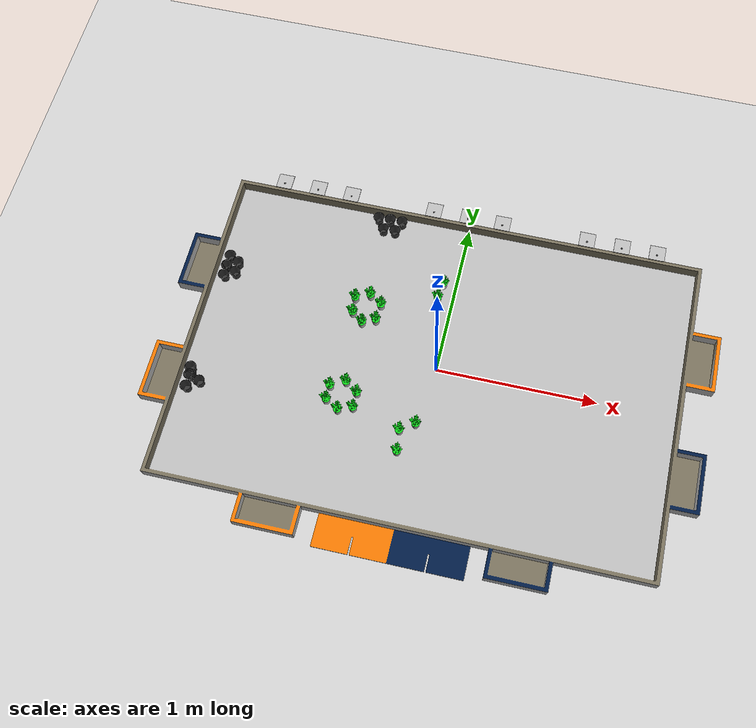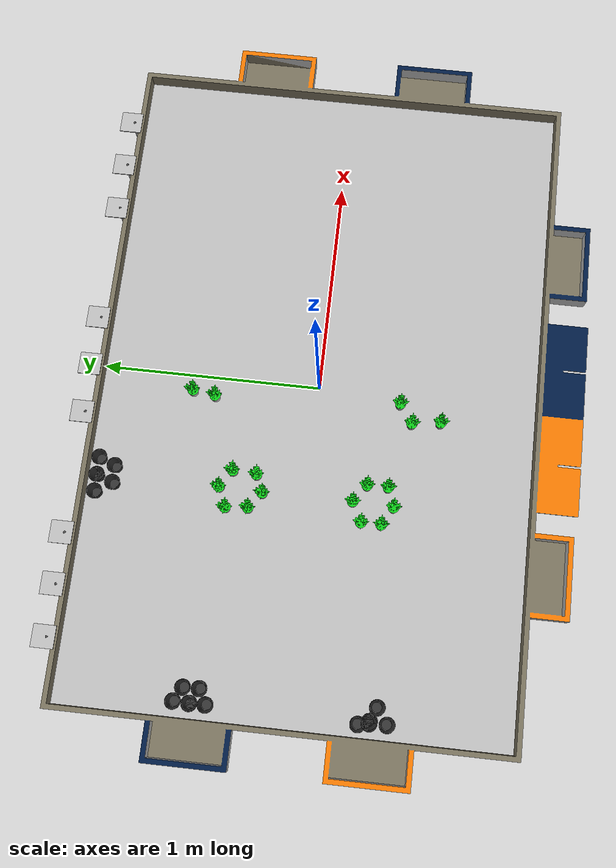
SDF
<sdf version="1.7">
 <world name="arena_eurobot">
  <model name="ground_plane">
   <static>true</static>
   <link name="link">
    <collision name="collision">
     <geometry><plane><normal>0 0 0</normal><size>100 100</size></plane></geometry>
    </collision>
    <visual name="visual">
     <geometry><plane><normal>0 0 0</normal><size>100 100</size></plane></geometry>
     <material>
      <ambient>0.8 0.8 0.8 1</ambient>
      <diffuse>0.8 0.8 0.8 1</diffuse>
      <specular>0.8 0.8 0.8 1</specular>
     </material>
    </visual>
   </link>
  </model>
  <model name="pot_1">
   <link name="base_link">
    <inertial>
     <pose>0 0 0.028448 0 -0 0</pose>
     <mass>0.016564</mass>
     <inertia>
      <ixx>1.415e-05</ixx>
      <ixy>-1.1112e-10</ixy>
      <ixz>-4.1716e-13</ixz>
      <iyy>1.4151e-05</iyy>
      <iyz>-1.5885e-13</iyz>
      <izz>1.1192e-05</izz>
     </inertia>
    </inertial>
    <collision name="base_link_collision">
     <geometry><mesh><scale>1 1 1</scale><uri>pot/meshes/base_link.dae</uri></mesh></geometry>
    </collision>
    <visual name="base_link_visual">
     <geometry><mesh><scale>1 1 1</scale><uri>pot/meshes/base_link.dae</uri></mesh></geometry>
    </visual>
   </link>
   <pose>-1.46317 -0.327897 0 0 -0 0</pose>
  </model>
  <model name="pot_4">
   <link name="base_link">
    <inertial>
     <pose>0 0 0.028448 0 -0 0</pose>
     <mass>0.016564</mass>
     <inertia>
      <ixx>1.415e-05</ixx>
      <ixy>-1.1112e-10</ixy>
      <ixz>-4.1716e-13</ixz>
      <iyy>1.4151e-05</iyy>
      <iyz>-1.5885e-13</iyz>
      <izz>1.1192e-05</izz>
     </inertia>
    </inertial>
    <collision name="base_link_collision">
     <geometry><mesh><scale>1 1 1</scale><uri>pot/meshes/base_link.dae</uri></mesh></geometry>
    </collision>
    <visual name="base_link_visual">
     <geometry><mesh><scale>1 1 1</scale><uri>pot/meshes/base_link.dae</uri></mesh></geometry>
    </visual>
   </link>
   <pose>-1.44622 -0.376296 0 0 -0 0</pose>
  </model>
  <model name="pot">
   <link name="base_link">
    <inertial>
     <pose>0 0 0.028448 0 -0 0</pose>
     <mass>0.016564</mass>
     <inertia>
      <ixx>1.415e-05</ixx>
      <ixy>-1.1112e-10</ixy>
      <ixz>-4.1716e-13</ixz>
      <iyy>1.4151e-05</iyy>
      <iyz>-1.5885e-13</iyz>
      <izz>1.1192e-05</izz>
     </inertia>
    </inertial>
    <collision name="base_link_collision">
     <geometry><mesh><scale>1 1 1</scale><uri>pot/meshes/base_link.dae</uri></mesh></geometry>
    </collision>
    <visual name="base_link_visual">
     <geometry><mesh><scale>1 1 1</scale><uri>pot/meshes/base_link.dae</uri></mesh></geometry>
    </visual>
   </link>
   <pose>-1.45371 -0.452197 0 0 -0 0</pose>
  </model>
  <model name="pot_2">
   <link name="base_link">
    <inertial>
     <pose>0 0 0.028448 0 -0 0</pose>
     <mass>0.016564</mass>
     <inertia>
      <ixx>1.415e-05</ixx>
      <ixy>-1.1112e-10</ixy>
      <ixz>-4.1716e-13</ixz>
      <iyy>1.4151e-05</iyy>
      <iyz>-1.5885e-13</iyz>
      <izz>1.1192e-05</izz>
     </inertia>
    </inertial>
    <collision name="base_link_collision">
     <geometry><mesh><scale>1 1 1</scale><uri>pot/meshes/base_link.dae</uri></mesh></geometry>
    </collision>
    <visual name="base_link_visual">
     <geometry><mesh><scale>1 1 1</scale><uri>pot/meshes/base_link.dae</uri></mesh></geometry>
    </visual>
   </link>
   <pose>-1.38703 -0.404067 0 0 -0 0</pose>
  </model>
  <model name="pot_3">
   <link name="base_link">
    <inertial>
     <pose>0 0 0.028448 0 -0 0</pose>
     <mass>0.016564</mass>
     <inertia>
      <ixx>1.415e-05</ixx>
      <ixy>-1.1112e-10</ixy>
      <ixz>-4.1716e-13</ixz>
      <iyy>1.4151e-05</iyy>
      <iyz>-1.5885e-13</iyz>
      <izz>1.1192e-05</izz>
     </inertia>
    </inertial>
    <collision name="base_link_collision">
     <geometry><mesh><scale>1 1 1</scale><uri>pot/meshes/base_link.dae</uri></mesh></geometry>
    </collision>
    <visual name="base_link_visual">
     <geometry><mesh><scale>1 1 1</scale><uri>pot/meshes/base_link.dae</uri></mesh></geometry>
    </visual>
   </link>
   <pose>-1.45477 -0.375674 0 0 -0 0</pose>
  </model>
  <model name="pot_5">
   <link name="base_link">
    <inertial>
     <pose>0 0 0.028448 0 -0 0</pose>
     <mass>0.016564</mass>
     <inertia>
      <ixx>1.415e-05</ixx>
      <ixy>-1.1112e-10</ixy>
      <ixz>-4.1716e-13</ixz>
      <iyy>1.4151e-05</iyy>
      <iyz>-1.5885e-13</iyz>
      <izz>1.1192e-05</izz>
     </inertia>
    </inertial>
    <collision name="base_link_collision">
     <geometry><mesh><scale>1 1 1</scale><uri>pot/meshes/base_link.dae</uri></mesh></geometry>
    </collision>
    <visual name="base_link_visual">
     <geometry><mesh><scale>1 1 1</scale><uri>pot/meshes/base_link.dae</uri></mesh></geometry>
    </visual>
   </link>
   <pose>-1.45244 0.465728 0 0 -0 0</pose>
  </model>
  <model name="pot_6">
   <link name="base_link">
    <inertial>
     <pose>0 0 0.028448 0 -0 0</pose>
     <mass>0.016564</mass>
     <inertia>
      <ixx>1.415e-05</ixx>
      <ixy>-1.1112e-10</ixy>
      <ixz>-4.1716e-13</ixz>
      <iyy>1.4151e-05</iyy>
      <iyz>-1.5885e-13</iyz>
      <izz>1.1192e-05</izz>
     </inertia>
    </inertial>
    <collision name="base_link_collision">
     <geometry><mesh><scale>1 1 1</scale><uri>pot/meshes/base_link.dae</uri></mesh></geometry>
    </collision>
    <visual name="base_link_visual">
     <geometry><mesh><scale>1 1 1</scale><uri>pot/meshes/base_link.dae</uri></mesh></geometry>
    </visual>
   </link>
   <pose>-1.45472 0.39426 0 0 -0 0</pose>
  </model>
  <model name="pot_7">
   <link name="base_link">
    <inertial>
     <pose>0 0 0.028448 0 -0 0</pose>
     <mass>0.016564</mass>
     <inertia>
      <ixx>1.415e-05</ixx>
      <ixy>-1.1112e-10</ixy>
      <ixz>-4.1716e-13</ixz>
      <iyy>1.4151e-05</iyy>
      <iyz>-1.5885e-13</iyz>
      <izz>1.1192e-05</izz>
     </inertia>
    </inertial>
    <collision name="base_link_collision">
     <geometry><mesh><scale>1 1 1</scale><uri>pot/meshes/base_link.dae</uri></mesh></geometry>
    </collision>
    <visual name="base_link_visual">
     <geometry><mesh><scale>1 1 1</scale><uri>pot/meshes/base_link.dae</uri></mesh></geometry>
    </visual>
   </link>
   <pose>-1.45396 0.325485 0 0 -0 0</pose>
  </model>
  <model name="pot_8">
   <link name="base_link">
    <inertial>
     <pose>0 0 0.028448 0 -0 0</pose>
     <mass>0.016564</mass>
     <inertia>
      <ixx>1.415e-05</ixx>
      <ixy>-1.1112e-10</ixy>
      <ixz>-4.1716e-13</ixz>
      <iyy>1.4151e-05</iyy>
      <iyz>-1.5885e-13</iyz>
      <izz>1.1192e-05</izz>
     </inertia>
    </inertial>
    <collision name="base_link_collision">
     <geometry><mesh><scale>1 1 1</scale><uri>pot/meshes/base_link.dae</uri></mesh></geometry>
    </collision>
    <visual name="base_link_visual">
     <geometry><mesh><scale>1 1 1</scale><uri>pot/meshes/base_link.dae</uri></mesh></geometry>
    </visual>
   </link>
   <pose>-1.45473 0.394914 0 0 -0 0</pose>
  </model>
  <model name="pot_9">
   <link name="base_link">
    <inertial>
     <pose>0 0 0.028448 0 -0 0</pose>
     <mass>0.016564</mass>
     <inertia>
      <ixx>1.415e-05</ixx>
      <ixy>-1.1112e-10</ixy>
      <ixz>-4.1716e-13</ixz>
      <iyy>1.4151e-05</iyy>
      <iyz>-1.5885e-13</iyz>
      <izz>1.1192e-05</izz>
     </inertia>
    </inertial>
    <collision name="base_link_collision">
     <geometry><mesh><scale>1 1 1</scale><uri>pot/meshes/base_link.dae</uri></mesh></geometry>
    </collision>
    <visual name="base_link_visual">
     <geometry><mesh><scale>1 1 1</scale><uri>pot/meshes/base_link.dae</uri></mesh></geometry>
    </visual>
   </link>
   <pose>-1.39157 0.431166 0 0 -0 0</pose>
  </model>
  <model name="pot_10">
   <link name="base_link">
    <inertial>
     <pose>0 0 0.028448 0 -0 0</pose>
     <mass>0.016564</mass>
     <inertia>
      <ixx>1.415e-05</ixx>
      <ixy>-1.1112e-10</ixy>
      <ixz>-4.1716e-13</ixz>
      <iyy>1.4151e-05</iyy>
      <iyz>-1.5885e-13</iyz>
      <izz>1.1192e-05</izz>
     </inertia>
    </inertial>
    <collision name="base_link_collision">
     <geometry><mesh><scale>1 1 1</scale><uri>pot/meshes/base_link.dae</uri></mesh></geometry>
    </collision>
    <visual name="base_link_visual">
     <geometry><mesh><scale>1 1 1</scale><uri>pot/meshes/base_link.dae</uri></mesh></geometry>
    </visual>
   </link>
   <pose>-1.39011 0.359827 0 0 -0 0</pose>
  </model>
  <model name="Arena">
   <link name="base_link">
    <inertial>
     <pose>-0 -0.05506 -0.005036 0 -0 0</pose>
     <mass>171.29</mass>
     <inertia>
      <ixx>59.518</ixx>
      <ixy>-4.0755e-14</ixy>
      <ixz>1.2559e-15</ixz>
      <iyy>127.22</iyy>
      <iyz>0.0019858</iyz>
      <izz>186.63</izz>
     </inertia>
    </inertial>
    <collision name="base_link_collision">
     <geometry><mesh><scale>1 1 1</scale><uri>Arena/meshes/base_link.dae</uri></mesh></geometry>
    </collision>
    <visual name="base_link_visual">
     <geometry><mesh><scale>1 1 1</scale><uri>Arena/meshes/base_link.dae</uri></mesh></geometry>
    </visual>
   </link>
   <joint name="solarpan1" type="revolute">
    <pose relative_to="base_link">-1.225 1.0522 0.104 0 -0 0</pose>
    <parent>base_link</parent>
    <child>Solar_pannel_1</child>
    <axis>
     <xyz>0 0 -1</xyz>
     <limit><lower>-1e+16</lower><upper>1e+16</upper></limit>
     <dynamics><spring_reference>0</spring_reference><spring_stiffness>0</spring_stiffness></dynamics>
    </axis>
   </joint>
   <link name="Solar_pannel_1">
    <pose relative_to="solarpan1">0 0 0 0 -0 0</pose>
    <inertial>
     <pose>0 8.9e-05 -0.00935 0 -0 0</pose>
     <mass>0.091146</mass>
     <inertia>
      <ixx>6.1683e-05</ixx>
      <ixy>-1.3376e-21</ixy>
      <ixz>-1.2843e-21</ixz>
      <iyy>5.2643e-05</iyy>
      <iyz>-2.1415e-06</iyz>
      <izz>9.8484e-05</izz>
     </inertia>
    </inertial>
    <collision name="Solar_pannel_1_collision">
     <geometry><mesh><scale>1 1 1</scale><uri>Arena/meshes/Solar_pannel_1.dae</uri></mesh></geometry>
    </collision>
    <visual name="Solar_pannel_1_visual">
     <geometry><mesh><scale>1 1 1</scale><uri>Arena/meshes/Solar_pannel_1.dae</uri></mesh></geometry>
    </visual>
   </link>
   <joint name="solarpan2" type="revolute">
    <pose relative_to="base_link">-1 1.0522 0.104 0 -0 0</pose>
    <parent>base_link</parent>
    <child>Solar_pannel_2</child>
    <axis>
     <xyz>0 0 -1</xyz>
     <limit><lower>-1e+16</lower><upper>1e+16</upper></limit>
     <dynamics><spring_reference>0</spring_reference><spring_stiffness>0</spring_stiffness></dynamics>
    </axis>
   </joint>
   <link name="Solar_pannel_2">
    <pose relative_to="solarpan2">0 0 0 0 -0 0</pose>
    <inertial>
     <pose>0 8.9e-05 -0.00935 0 -0 0</pose>
     <mass>0.091146</mass>
     <inertia>
      <ixx>6.1683e-05</ixx>
      <ixy>1.6143e-21</ixy>
      <ixz>-1.7656e-20</ixz>
      <iyy>5.2643e-05</iyy>
      <iyz>-2.1415e-06</iyz>
      <izz>9.8484e-05</izz>
     </inertia>
    </inertial>
    <collision name="Solar_pannel_2_collision">
     <geometry><mesh><scale>1 1 1</scale><uri>Arena/meshes/Solar_pannel_2.dae</uri></mesh></geometry>
    </collision>
    <visual name="Solar_pannel_2_visual">
     <geometry><mesh><scale>1 1 1</scale><uri>Arena/meshes/Solar_pannel_2.dae</uri></mesh></geometry>
    </visual>
   </link>
   <joint name="solarpan3" type="revolute">
    <pose relative_to="base_link">-0.775 1.0522 0.104 0 -0 0</pose>
    <parent>base_link</parent>
    <child>Solar_pannel_3</child>
    <axis>
     <xyz>0 0 -1</xyz>
     <limit><lower>-1e+16</lower><upper>1e+16</upper></limit>
     <dynamics><spring_reference>0</spring_reference><spring_stiffness>0</spring_stiffness></dynamics>
    </axis>
   </joint>
   <link name="Solar_pannel_3">
    <pose relative_to="solarpan3">0 0 0 0 -0 0</pose>
    <inertial>
     <pose>0 8.9e-05 -0.00935 0 -0 0</pose>
     <mass>0.091146</mass>
     <inertia>
      <ixx>6.1683e-05</ixx>
      <ixy>9.3663e-22</ixy>
      <ixz>-1.9066e-21</ixz>
      <iyy>5.2643e-05</iyy>
      <iyz>-2.1415e-06</iyz>
      <izz>9.8484e-05</izz>
     </inertia>
    </inertial>
    <collision name="Solar_pannel_3_collision">
     <geometry><mesh><scale>1 1 1</scale><uri>Arena/meshes/Solar_pannel_3.dae</uri></mesh></geometry>
    </collision>
    <visual name="Solar_pannel_3_visual">
     <geometry><mesh><scale>1 1 1</scale><uri>Arena/meshes/Solar_pannel_3.dae</uri></mesh></geometry>
    </visual>
   </link>
   <joint name="solarpan4" type="revolute">
    <pose relative_to="base_link">-0.225 1.0522 0.104 0 -0 0</pose>
    <parent>base_link</parent>
    <child>Solar_pannel_4</child>
    <axis>
     <xyz>0 0 -1</xyz>
     <limit><lower>-1e+16</lower><upper>1e+16</upper></limit>
     <dynamics><spring_reference>0</spring_reference><spring_stiffness>0</spring_stiffness></dynamics>
    </axis>
   </joint>
   <link name="Solar_pannel_4">
    <pose relative_to="solarpan4">0 0 0 0 -0 0</pose>
    <inertial>
     <pose>0 8.9e-05 -0.00935 0 -0 0</pose>
     <mass>0.0911456</mass>
     <inertia>
      <ixx>6.1683e-05</ixx>
      <ixy>5.95425e-22</ixy>
      <ixz>1.9851e-21</ixz>
      <iyy>5.26435e-05</iyy>
      <iyz>-2.14147e-06</iyz>
      <izz>9.84838e-05</izz>
     </inertia>
    </inertial>
    <collision name="Solar_pannel_4_collision">
     <geometry><mesh><scale>1 1 1</scale><uri>Arena/meshes/Solar_pannel_4.dae</uri></mesh></geometry>
    </collision>
    <visual name="Solar_pannel_4_visual">
     <geometry><mesh><scale>1 1 1</scale><uri>Arena/meshes/Solar_pannel_4.dae</uri></mesh></geometry>
    </visual>
   </link>
   <joint name="solarpan5" type="revolute">
    <pose relative_to="base_link">0 1.0522 0.104 0 -0 0</pose>
    <parent>base_link</parent>
    <child>Solar_pannel_5</child>
    <axis>
     <xyz>0 0 -1</xyz>
     <limit><lower>-1e+16</lower><upper>1e+16</upper></limit>
     <dynamics><spring_reference>0</spring_reference><spring_stiffness>0</spring_stiffness></dynamics>
    </axis>
   </joint>
   <link name="Solar_pannel_5">
    <pose relative_to="solarpan5">0 0 0 0 -0 0</pose>
    <inertial>
     <pose>-0 8.9e-05 -0.00935 0 -0 0</pose>
     <mass>0.091146</mass>
     <inertia>
      <ixx>6.1683e-05</ixx>
      <ixy>2.0323e-21</ixy>
      <ixz>4.5452e-21</ixz>
      <iyy>5.2643e-05</iyy>
      <iyz>-2.1415e-06</iyz>
      <izz>9.8484e-05</izz>
     </inertia>
    </inertial>
    <collision name="Solar_pannel_5_collision">
     <geometry><mesh><scale>1 1 1</scale><uri>Arena/meshes/Solar_pannel_5.dae</uri></mesh></geometry>
    </collision>
    <visual name="Solar_pannel_5_visual">
     <geometry><mesh><scale>1 1 1</scale><uri>Arena/meshes/Solar_pannel_5.dae</uri></mesh></geometry>
    </visual>
   </link>
   <joint name="solarpan6" type="revolute">
    <pose relative_to="base_link">0.225 1.0522 0.104 0 -0 0</pose>
    <parent>base_link</parent>
    <child>Solar_pannel_6</child>
    <axis>
     <xyz>0 0 -1</xyz>
     <limit><lower>-1e+16</lower><upper>1e+16</upper></limit>
     <dynamics><spring_reference>0</spring_reference><spring_stiffness>0</spring_stiffness></dynamics>
    </axis>
   </joint>
   <link name="Solar_pannel_6">
    <pose relative_to="solarpan6">0 0 0 0 -0 0</pose>
    <inertial>
     <pose>0 8.9e-05 -0.00935 0 -0 0</pose>
     <mass>0.091146</mass>
     <inertia>
      <ixx>6.1683e-05</ixx>
      <ixy>6.1944e-22</ixy>
      <ixz>1.9855e-21</ixz>
      <iyy>5.2643e-05</iyy>
      <iyz>-2.1415e-06</iyz>
      <izz>9.8484e-05</izz>
     </inertia>
    </inertial>
    <collision name="Solar_pannel_6_collision">
     <geometry><mesh><scale>1 1 1</scale><uri>Arena/meshes/Solar_pannel_6.dae</uri></mesh></geometry>
    </collision>
    <visual name="Solar_pannel_6_visual">
     <geometry><mesh><scale>1 1 1</scale><uri>Arena/meshes/Solar_pannel_6.dae</uri></mesh></geometry>
    </visual>
   </link>
   <joint name="solarpan7" type="revolute">
    <pose relative_to="base_link">0.775 1.0522 0.104 0 -0 0</pose>
    <parent>base_link</parent>
    <child>Solar_pannel_7</child>
    <axis>
     <xyz>0 0 -1</xyz>
     <limit><lower>-1e+16</lower><upper>1e+16</upper></limit>
     <dynamics><spring_reference>0</spring_reference><spring_stiffness>0</spring_stiffness></dynamics>
    </axis>
   </joint>
   <link name="Solar_pannel_7">
    <pose relative_to="solarpan7">0 0 0 0 -0 0</pose>
    <inertial>
     <pose>0 8.9e-05 -0.00935 0 -0 0</pose>
     <mass>0.091146</mass>
     <inertia>
      <ixx>6.1683e-05</ixx>
      <ixy>9.7042e-22</ixy>
      <ixz>-1.4087e-21</ixz>
      <iyy>5.2643e-05</iyy>
      <iyz>-2.1415e-06</iyz>
      <izz>9.8484e-05</izz>
     </inertia>
    </inertial>
    <collision name="Solar_pannel_7_collision">
     <geometry><mesh><scale>1 1 1</scale><uri>Arena/meshes/Solar_pannel_7.dae</uri></mesh></geometry>
    </collision>
    <visual name="Solar_pannel_7_visual">
     <geometry><mesh><scale>1 1 1</scale><uri>Arena/meshes/Solar_pannel_7.dae</uri></mesh></geometry>
    </visual>
   </link>
   <joint name="solarpan8" type="revolute">
    <pose relative_to="base_link">1 1.0522 0.104 0 -0 0</pose>
    <parent>base_link</parent>
    <child>Solar_pannel_8</child>
    <axis>
     <xyz>0 0 -1</xyz>
     <limit><lower>-1e+16</lower><upper>1e+16</upper></limit>
     <dynamics><spring_reference>0</spring_reference><spring_stiffness>0</spring_stiffness></dynamics>
    </axis>
   </joint>
   <link name="Solar_pannel_8">
    <pose relative_to="solarpan8">0 0 0 0 -0 0</pose>
    <inertial>
     <pose>0 8.9e-05 -0.00935 0 -0 0</pose>
     <mass>0.091146</mass>
     <inertia>
      <ixx>6.1683e-05</ixx>
      <ixy>1.041e-20</ixy>
      <ixz>-1.5798e-20</ixz>
      <iyy>5.2643e-05</iyy>
      <iyz>-2.1415e-06</iyz>
      <izz>9.8484e-05</izz>
     </inertia>
    </inertial>
    <collision name="Solar_pannel_8_collision">
     <geometry><mesh><scale>1 1 1</scale><uri>Arena/meshes/Solar_pannel_8.dae</uri></mesh></geometry>
    </collision>
    <visual name="Solar_pannel_8_visual">
     <geometry><mesh><scale>1 1 1</scale><uri>Arena/meshes/Solar_pannel_8.dae</uri></mesh></geometry>
    </visual>
   </link>
   <joint name="solarpan9" type="revolute">
    <pose relative_to="base_link">1.225 1.0522 0.104 0 -0 0</pose>
    <parent>base_link</parent>
    <child>Solar_pannel_9</child>
    <axis>
     <xyz>0 0 -1</xyz>
     <limit><effort>10</effort><velocity>10</velocity><lower>-1e+16</lower><upper>1e+16</upper></limit>
     <dynamics>
      <damping>0.1</damping>
      <friction>0.1</friction>
      <spring_reference>0</spring_reference>
      <spring_stiffness>0</spring_stiffness>
     </dynamics>
    </axis>
   </joint>
   <link name="Solar_pannel_9">
    <pose relative_to="solarpan9">0 0 0 0 -0 0</pose>
    <inertial>
     <pose>0 8.9e-05 -0.00935 0 -0 0</pose>
     <mass>0.091146</mass>
     <inertia>
      <ixx>6.1683e-05</ixx>
      <ixy>-1.3363e-21</ixy>
      <ixz>-1.2847e-21</ixz>
      <iyy>5.2643e-05</iyy>
      <iyz>-2.1415e-06</iyz>
      <izz>9.8484e-05</izz>
     </inertia>
    </inertial>
    <collision name="Solar_pannel_9_collision">
     <geometry><mesh><scale>1 1 1</scale><uri>Arena/meshes/Solar_pannel_9.dae</uri></mesh></geometry>
    </collision>
    <visual name="Solar_pannel_9_visual">
     <geometry><mesh><scale>1 1 1</scale><uri>Arena/meshes/Solar_pannel_9.dae</uri></mesh></geometry>
    </visual>
   </link>
   <pose>-0.020584 -0.002804 0 0 -0 0</pose>
  </model>
  <model name="pot_11">
   <link name="base_link">
    <inertial>
     <pose>0 0 0.028448 0 -0 0</pose>
     <mass>0.016564</mass>
     <inertia>
      <ixx>1.415e-05</ixx>
      <ixy>-1.1112e-10</ixy>
      <ixz>-4.1716e-13</ixz>
      <iyy>1.4151e-05</iyy>
      <iyz>-1.5885e-13</iyz>
      <izz>1.1192e-05</izz>
     </inertia>
    </inertial>
    <collision name="base_link_collision">
     <geometry><mesh><scale>1 1 1</scale><uri>pot/meshes/base_link.dae</uri></mesh></geometry>
    </collision>
    <visual name="base_link_visual">
     <geometry><mesh><scale>1 1 1</scale><uri>pot/meshes/base_link.dae</uri></mesh></geometry>
    </visual>
   </link>
   <pose>-0.517371 0.947978 0 0 -0 0</pose>
  </model>
  <model name="pot_12">
   <link name="base_link">
    <inertial>
     <pose>0 0 0.028448 0 -0 0</pose>
     <mass>0.016564</mass>
     <inertia>
      <ixx>1.415e-05</ixx>
      <ixy>-1.1112e-10</ixy>
      <ixz>-4.1716e-13</ixz>
      <iyy>1.4151e-05</iyy>
      <iyz>-1.5885e-13</iyz>
      <izz>1.1192e-05</izz>
     </inertia>
    </inertial>
    <collision name="base_link_collision">
     <geometry><mesh><scale>1 1 1</scale><uri>pot/meshes/base_link.dae</uri></mesh></geometry>
    </collision>
    <visual name="base_link_visual">
     <geometry><mesh><scale>1 1 1</scale><uri>pot/meshes/base_link.dae</uri></mesh></geometry>
    </visual>
   </link>
   <pose>-0.51699 0.946774 0 0 -0 0</pose>
  </model>
  <model name="pot_13">
   <link name="base_link">
    <inertial>
     <pose>0 0 0.028448 0 -0 0</pose>
     <mass>0.016564</mass>
     <inertia>
      <ixx>1.415e-05</ixx>
      <ixy>-1.1112e-10</ixy>
      <ixz>-4.1716e-13</ixz>
      <iyy>1.4151e-05</iyy>
      <iyz>-1.5885e-13</iyz>
      <izz>1.1192e-05</izz>
     </inertia>
    </inertial>
    <collision name="base_link_collision">
     <geometry><mesh><scale>1 1 1</scale><uri>pot/meshes/base_link.dae</uri></mesh></geometry>
    </collision>
    <visual name="base_link_visual">
     <geometry><mesh><scale>1 1 1</scale><uri>pot/meshes/base_link.dae</uri></mesh></geometry>
    </visual>
   </link>
   <pose>-0.437566 0.947083 0 0 -0 0</pose>
  </model>
  <model name="pot_14">
   <link name="base_link">
    <inertial>
     <pose>0 0 0.028448 0 -0 0</pose>
     <mass>0.016564</mass>
     <inertia>
      <ixx>1.415e-05</ixx>
      <ixy>-1.1112e-10</ixy>
      <ixz>-4.1716e-13</ixz>
      <iyy>1.4151e-05</iyy>
      <iyz>-1.5885e-13</iyz>
      <izz>1.1192e-05</izz>
     </inertia>
    </inertial>
    <collision name="base_link_collision">
     <geometry><mesh><scale>1 1 1</scale><uri>pot/meshes/base_link.dae</uri></mesh></geometry>
    </collision>
    <visual name="base_link_visual">
     <geometry><mesh><scale>1 1 1</scale><uri>pot/meshes/base_link.dae</uri></mesh></geometry>
    </visual>
   </link>
   <pose>-0.592541 0.945586 0 0 -0 0</pose>
  </model>
  <model name="pot_15">
   <link name="base_link">
    <inertial>
     <pose>0 0 0.028448 0 -0 0</pose>
     <mass>0.016564</mass>
     <inertia>
      <ixx>1.415e-05</ixx>
      <ixy>-1.1112e-10</ixy>
      <ixz>-4.1716e-13</ixz>
      <iyy>1.4151e-05</iyy>
      <iyz>-1.5885e-13</iyz>
      <izz>1.1192e-05</izz>
     </inertia>
    </inertial>
    <collision name="base_link_collision">
     <geometry><mesh><scale>1 1 1</scale><uri>pot/meshes/base_link.dae</uri></mesh></geometry>
    </collision>
    <visual name="base_link_visual">
     <geometry><mesh><scale>1 1 1</scale><uri>pot/meshes/base_link.dae</uri></mesh></geometry>
    </visual>
   </link>
   <pose>-0.5453 0.872012 0 0 -0 0</pose>
  </model>
  <model name="pot_16">
   <link name="base_link">
    <inertial>
     <pose>0 0 0.028448 0 -0 0</pose>
     <mass>0.016564</mass>
     <inertia>
      <ixx>1.415e-05</ixx>
      <ixy>-1.1112e-10</ixy>
      <ixz>-4.1716e-13</ixz>
      <iyy>1.4151e-05</iyy>
      <iyz>-1.5885e-13</iyz>
      <izz>1.1192e-05</izz>
     </inertia>
    </inertial>
    <collision name="base_link_collision">
     <geometry><mesh><scale>1 1 1</scale><uri>pot/meshes/base_link.dae</uri></mesh></geometry>
    </collision>
    <visual name="base_link_visual">
     <geometry><mesh><scale>1 1 1</scale><uri>pot/meshes/base_link.dae</uri></mesh></geometry>
    </visual>
   </link>
   <pose>-0.46808 0.872734 0 0 -0 0</pose>
  </model>
  <model name="plant">
   <link name="base_link">
    <inertial>
     <pose>-0 0 0.033735 0 -0 0</pose>
     <mass>0.086038</mass>
     <inertia>
      <ixx>6.2923e-05</ixx>
      <ixy>-1.3403e-11</ixy>
      <ixz>2.9225e-11</ixz>
      <iyy>6.2923e-05</iyy>
      <iyz>-3.3028e-10</iyz>
      <izz>2.4458e-05</izz>
     </inertia>
    </inertial>
    <collision name="base_link_collision">
     <geometry><mesh><scale>1 1 1</scale><uri>plant/meshes/base_link.dae</uri></mesh></geometry>
    </collision>
    <visual name="base_link_visual">
     <geometry><mesh><scale>1 1 1</scale><uri>plant/meshes/base_link.dae</uri></mesh></geometry>
    </visual>
   </link>
   <pose>-0.523441 -0.39288 0 0 -0 0</pose>
  </model>
  <model name="plant_0">
   <link name="base_link">
    <inertial>
     <pose>-0 0 0.033735 0 -0 0</pose>
     <mass>0.086038</mass>
     <inertia>
      <ixx>6.2923e-05</ixx>
      <ixy>-1.3403e-11</ixy>
      <ixz>2.9225e-11</ixz>
      <iyy>6.2923e-05</iyy>
      <iyz>-3.3028e-10</iyz>
      <izz>2.4458e-05</izz>
     </inertia>
    </inertial>
    <collision name="base_link_collision">
     <geometry><mesh><scale>1 1 1</scale><uri>plant/meshes/base_link.dae</uri></mesh></geometry>
    </collision>
    <visual name="base_link_visual">
     <geometry><mesh><scale>1 1 1</scale><uri>plant/meshes/base_link.dae</uri></mesh></geometry>
    </visual>
   </link>
   <pose>-0.605675 -0.344844 0 0 -0 0</pose>
  </model>
  <model name="plant_1">
   <link name="base_link">
    <inertial>
     <pose>-0 0 0.033735 0 -0 0</pose>
     <mass>0.086038</mass>
     <inertia>
      <ixx>6.2923e-05</ixx>
      <ixy>-1.3403e-11</ixy>
      <ixz>2.9225e-11</ixz>
      <iyy>6.2923e-05</iyy>
      <iyz>-3.3028e-10</iyz>
      <izz>2.4458e-05</izz>
     </inertia>
    </inertial>
    <collision name="base_link_collision">
     <geometry><mesh><scale>1 1 1</scale><uri>plant/meshes/base_link.dae</uri></mesh></geometry>
    </collision>
    <visual name="base_link_visual">
     <geometry><mesh><scale>1 1 1</scale><uri>plant/meshes/base_link.dae</uri></mesh></geometry>
    </visual>
   </link>
   <pose>-0.605631 -0.25398 0 0 -0 0</pose>
  </model>
  <model name="plant_2">
   <link name="base_link">
    <inertial>
     <pose>-0 0 0.033735 0 -0 0</pose>
     <mass>0.086038</mass>
     <inertia>
      <ixx>6.2923e-05</ixx>
      <ixy>-1.3403e-11</ixy>
      <ixz>2.9225e-11</ixz>
      <iyy>6.2923e-05</iyy>
      <iyz>-3.3028e-10</iyz>
      <izz>2.4458e-05</izz>
     </inertia>
    </inertial>
    <collision name="base_link_collision">
     <geometry><mesh><scale>1 1 1</scale><uri>plant/meshes/base_link.dae</uri></mesh></geometry>
    </collision>
    <visual name="base_link_visual">
     <geometry><mesh><scale>1 1 1</scale><uri>plant/meshes/base_link.dae</uri></mesh></geometry>
    </visual>
   </link>
   <pose>-0.515586 -0.208655 0 0 -0 0</pose>
  </model>
  <model name="plant_3">
   <link name="base_link">
    <inertial>
     <pose>-0 0 0.033735 0 -0 0</pose>
     <mass>0.086038</mass>
     <inertia>
      <ixx>6.2923e-05</ixx>
      <ixy>-1.3403e-11</ixy>
      <ixz>2.9225e-11</ixz>
      <iyy>6.2923e-05</iyy>
      <iyz>-3.3028e-10</iyz>
      <izz>2.4458e-05</izz>
     </inertia>
    </inertial>
    <collision name="base_link_collision">
     <geometry><mesh><scale>1 1 1</scale><uri>plant/meshes/base_link.dae</uri></mesh></geometry>
    </collision>
    <visual name="base_link_visual">
     <geometry><mesh><scale>1 1 1</scale><uri>plant/meshes/base_link.dae</uri></mesh></geometry>
    </visual>
   </link>
   <pose>-0.435879 -0.265484 0 0 -0 0</pose>
  </model>
  <model name="plant_4">
   <link name="base_link">
    <inertial>
     <pose>-0 0 0.033735 0 -0 0</pose>
     <mass>0.086038</mass>
     <inertia>
      <ixx>6.2923e-05</ixx>
      <ixy>-1.3403e-11</ixy>
      <ixz>2.9225e-11</ixz>
      <iyy>6.2923e-05</iyy>
      <iyz>-3.3028e-10</iyz>
      <izz>2.4458e-05</izz>
     </inertia>
    </inertial>
    <collision name="base_link_collision">
     <geometry><mesh><scale>1 1 1</scale><uri>plant/meshes/base_link.dae</uri></mesh></geometry>
    </collision>
    <visual name="base_link_visual">
     <geometry><mesh><scale>1 1 1</scale><uri>plant/meshes/base_link.dae</uri></mesh></geometry>
    </visual>
   </link>
   <pose>-0.43538 -0.361262 0 0 -0 0</pose>
  </model>
  <model name="plant_5">
   <link name="base_link">
    <inertial>
     <pose>-0 0 0.033735 0 -0 0</pose>
     <mass>0.086038</mass>
     <inertia>
      <ixx>6.2923e-05</ixx>
      <ixy>-1.3403e-11</ixy>
      <ixz>2.9225e-11</ixz>
      <iyy>6.2923e-05</iyy>
      <iyz>-3.3028e-10</iyz>
      <izz>2.4458e-05</izz>
     </inertia>
    </inertial>
    <collision name="base_link_collision">
     <geometry><mesh><scale>1 1 1</scale><uri>plant/meshes/base_link.dae</uri></mesh></geometry>
    </collision>
    <visual name="base_link_visual">
     <geometry><mesh><scale>1 1 1</scale><uri>plant/meshes/base_link.dae</uri></mesh></geometry>
    </visual>
   </link>
   <pose>-0.520295 0.19921 0 0 -0 0</pose>
  </model>
  <model name="plant_6">
   <link name="base_link">
    <inertial>
     <pose>-0 0 0.033735 0 -0 0</pose>
     <mass>0.086038</mass>
     <inertia>
      <ixx>6.2923e-05</ixx>
      <ixy>-1.3403e-11</ixy>
      <ixz>2.9225e-11</ixz>
      <iyy>6.2923e-05</iyy>
      <iyz>-3.3028e-10</iyz>
      <izz>2.4458e-05</izz>
     </inertia>
    </inertial>
    <collision name="base_link_collision">
     <geometry><mesh><scale>1 1 1</scale><uri>plant/meshes/base_link.dae</uri></mesh></geometry>
    </collision>
    <visual name="base_link_visual">
     <geometry><mesh><scale>1 1 1</scale><uri>plant/meshes/base_link.dae</uri></mesh></geometry>
    </visual>
   </link>
   <pose>-0.593197 0.255082 0 0 -0 0</pose>
  </model>
  <model name="plant_7">
   <link name="base_link">
    <inertial>
     <pose>-0 0 0.033735 0 -0 0</pose>
     <mass>0.086038</mass>
     <inertia>
      <ixx>6.2923e-05</ixx>
      <ixy>-1.3403e-11</ixy>
      <ixz>2.9225e-11</ixz>
      <iyy>6.2923e-05</iyy>
      <iyz>-3.3028e-10</iyz>
      <izz>2.4458e-05</izz>
     </inertia>
    </inertial>
    <collision name="base_link_collision">
     <geometry><mesh><scale>1 1 1</scale><uri>plant/meshes/base_link.dae</uri></mesh></geometry>
    </collision>
    <visual name="base_link_visual">
     <geometry><mesh><scale>1 1 1</scale><uri>plant/meshes/base_link.dae</uri></mesh></geometry>
    </visual>
   </link>
   <pose>-0.602143 0.356472 0 0 -0 0</pose>
  </model>
  <model name="plant_8">
   <link name="base_link">
    <inertial>
     <pose>-0 0 0.033735 0 -0 0</pose>
     <mass>0.086038</mass>
     <inertia>
      <ixx>6.2923e-05</ixx>
      <ixy>-1.3403e-11</ixy>
      <ixz>2.9225e-11</ixz>
      <iyy>6.2923e-05</iyy>
      <iyz>-3.3028e-10</iyz>
      <izz>2.4458e-05</izz>
     </inertia>
    </inertial>
    <collision name="base_link_collision">
     <geometry><mesh><scale>1 1 1</scale><uri>plant/meshes/base_link.dae</uri></mesh></geometry>
    </collision>
    <visual name="base_link_visual">
     <geometry><mesh><scale>1 1 1</scale><uri>plant/meshes/base_link.dae</uri></mesh></geometry>
    </visual>
   </link>
   <pose>-0.512217 0.395315 0 0 -0 0</pose>
  </model>
  <model name="plant_9">
   <link name="base_link">
    <inertial>
     <pose>-0 0 0.033735 0 -0 0</pose>
     <mass>0.086038</mass>
     <inertia>
      <ixx>6.2923e-05</ixx>
      <ixy>-1.3403e-11</ixy>
      <ixz>2.9225e-11</ixz>
      <iyy>6.2923e-05</iyy>
      <iyz>-3.3028e-10</iyz>
      <izz>2.4458e-05</izz>
     </inertia>
    </inertial>
    <collision name="base_link_collision">
     <geometry><mesh><scale>1 1 1</scale><uri>plant/meshes/base_link.dae</uri></mesh></geometry>
    </collision>
    <visual name="base_link_visual">
     <geometry><mesh><scale>1 1 1</scale><uri>plant/meshes/base_link.dae</uri></mesh></geometry>
    </visual>
   </link>
   <pose>-0.433098 0.343352 0 0 -0 0</pose>
  </model>
  <model name="plant_10">
   <link name="base_link">
    <inertial>
     <pose>-0 0 0.033735 0 -0 0</pose>
     <mass>0.086038</mass>
     <inertia>
      <ixx>6.2923e-05</ixx>
      <ixy>-1.3403e-11</ixy>
      <ixz>2.9225e-11</ixz>
      <iyy>6.2923e-05</iyy>
      <iyz>-3.3028e-10</iyz>
      <izz>2.4458e-05</izz>
     </inertia>
    </inertial>
    <collision name="base_link_collision">
     <geometry><mesh><scale>1 1 1</scale><uri>plant/meshes/base_link.dae</uri></mesh></geometry>
    </collision>
    <visual name="base_link_visual">
     <geometry><mesh><scale>1 1 1</scale><uri>plant/meshes/base_link.dae</uri></mesh></geometry>
    </visual>
   </link>
   <pose>-0.440131 0.234428 0 0 -0 0</pose>
  </model>
  <model name="plant_12">
   <link name="base_link">
    <inertial>
     <pose>-0 0 0.033735 0 -0 0</pose>
     <mass>0.086038</mass>
     <inertia>
      <ixx>6.2923e-05</ixx>
      <ixy>-1.3403e-11</ixy>
      <ixz>2.9225e-11</ixz>
      <iyy>6.2923e-05</iyy>
      <iyz>-3.3028e-10</iyz>
      <izz>2.4458e-05</izz>
     </inertia>
    </inertial>
    <collision name="base_link_collision">
     <geometry><mesh><scale>1 1 1</scale><uri>plant/meshes/base_link.dae</uri></mesh></geometry>
    </collision>
    <visual name="base_link_visual">
     <geometry><mesh><scale>1 1 1</scale><uri>plant/meshes/base_link.dae</uri></mesh></geometry>
    </visual>
   </link>
   <pose>-0.095253 0.469886 0 0 -0 0</pose>
  </model>
  <model name="plant_13">
   <link name="base_link">
    <inertial>
     <pose>-0 0 0.033735 0 -0 0</pose>
     <mass>0.086038</mass>
     <inertia>
      <ixx>6.2923e-05</ixx>
      <ixy>-1.3403e-11</ixy>
      <ixz>2.9225e-11</ixz>
      <iyy>6.2923e-05</iyy>
      <iyz>-3.3028e-10</iyz>
      <izz>2.4458e-05</izz>
     </inertia>
    </inertial>
    <collision name="base_link_collision">
     <geometry><mesh><scale>1 1 1</scale><uri>plant/meshes/base_link.dae</uri></mesh></geometry>
    </collision>
    <visual name="base_link_visual">
     <geometry><mesh><scale>1 1 1</scale><uri>plant/meshes/base_link.dae</uri></mesh></geometry>
    </visual>
   </link>
   <pose>-0.08041 0.57362 0 0 -0 0</pose>
  </model>
  <model name="plant_30">
   <link name="base_link">
    <inertial>
     <pose>-0 0 0.033735 0 -0 0</pose>
     <mass>0.086038</mass>
     <inertia>
      <ixx>6.2923e-05</ixx>
      <ixy>-1.3403e-11</ixy>
      <ixz>2.9225e-11</ixz>
      <iyy>6.2923e-05</iyy>
      <iyz>-3.3028e-10</iyz>
      <izz>2.4458e-05</izz>
     </inertia>
    </inertial>
    <collision name="base_link_collision">
     <geometry><mesh><scale>1 1 1</scale><uri>plant/meshes/base_link.dae</uri></mesh></geometry>
    </collision>
    <visual name="base_link_visual">
     <geometry><mesh><scale>1 1 1</scale><uri>plant/meshes/base_link.dae</uri></mesh></geometry>
    </visual>
   </link>
   <pose>-0.113571 -0.570636 0 0 -0 0</pose>
  </model>
  <model name="plant_31">
   <link name="base_link">
    <inertial>
     <pose>-0 0 0.033735 0 -0 0</pose>
     <mass>0.086038</mass>
     <inertia>
      <ixx>6.2923e-05</ixx>
      <ixy>-1.3403e-11</ixy>
      <ixz>2.9225e-11</ixz>
      <iyy>6.2923e-05</iyy>
      <iyz>-3.3028e-10</iyz>
      <izz>2.4458e-05</izz>
     </inertia>
    </inertial>
    <collision name="base_link_collision">
     <geometry><mesh><scale>1 1 1</scale><uri>plant/meshes/base_link.dae</uri></mesh></geometry>
    </collision>
    <visual name="base_link_visual">
     <geometry><mesh><scale>1 1 1</scale><uri>plant/meshes/base_link.dae</uri></mesh></geometry>
    </visual>
   </link>
   <pose>-0.130736 -0.439935 0 0 -0 0</pose>
  </model>
  <model name="plant_32">
   <link name="base_link">
    <inertial>
     <pose>-0 0 0.033735 0 -0 0</pose>
     <mass>0.086038</mass>
     <inertia>
      <ixx>6.2923e-05</ixx>
      <ixy>-1.3403e-11</ixy>
      <ixz>2.9225e-11</ixz>
      <iyy>6.2923e-05</iyy>
      <iyz>-3.3028e-10</iyz>
      <izz>2.4458e-05</izz>
     </inertia>
    </inertial>
    <collision name="base_link_collision">
     <geometry><mesh><scale>1 1 1</scale><uri>plant/meshes/base_link.dae</uri></mesh></geometry>
    </collision>
    <visual name="base_link_visual">
     <geometry><mesh><scale>1 1 1</scale><uri>plant/meshes/base_link.dae</uri></mesh></geometry>
    </visual>
   </link>
   <pose>-0.043288 -0.379646 0 0 -0 0</pose>
  </model>
 </world>
</sdf>
